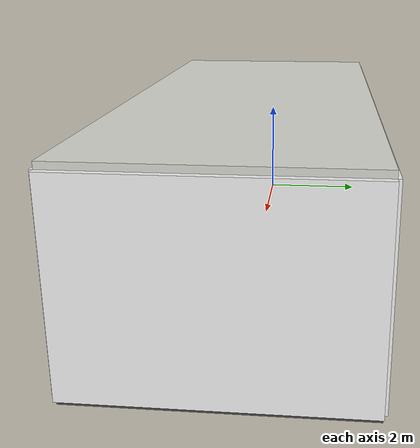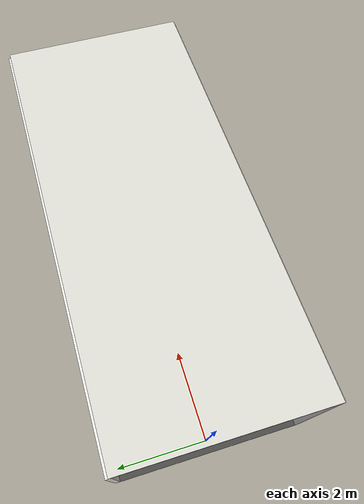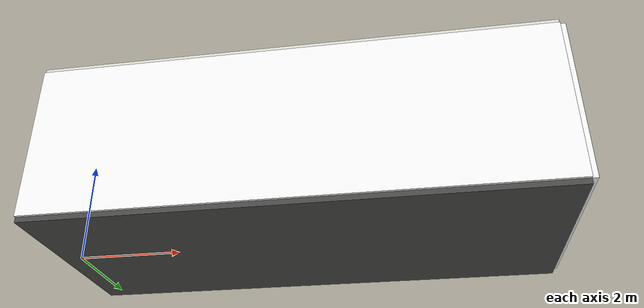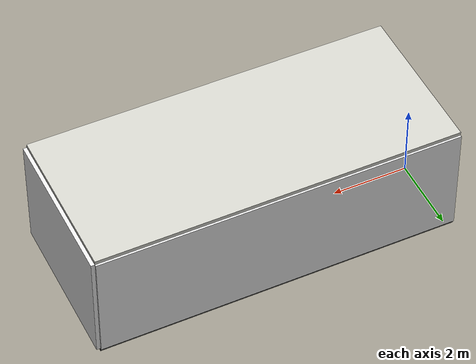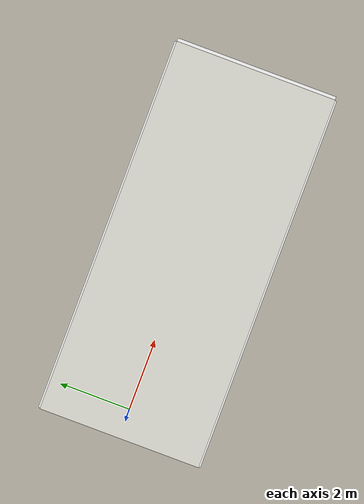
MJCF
<mujoco model="Textured square obstacle hallway">
  <option integrator="RK4" density="1.225" viscosity="1.8e-5" timestep="0.001"/>
  <compiler inertiafromgeom="false" autolimits="true" angle="degree"/>
  <statistic center="4.5 0 0.5" extent="5.5"/>
  <visual>
    <headlight diffuse="0.12 0.12 0.12" ambient="0.08 0.08 0.08" specular="0 0 0"/>
    <rgba haze="0.03 0.03 0.03 0" fog="1 1 1 0"/>
    <map fogstart="0" fogend="0"/>
    <global azimuth="135" elevation="-18" ellipsoidinertia="true"/>
  </visual>
  <asset>
    <texture name="floor_texture" type="2d" builtin="checker"
             rgb1="0.31 0.31 0.30" rgb2="0.23 0.23 0.22" width="512" height="512"/>
    <texture name="wall_texture" type="2d" file="textures/off_white_painted_plaster.png"/>
    <texture name="obstacle_texture" type="2d" builtin="checker" rgb1="0.98 0.72 0.02" rgb2="0.025 0.025 0.025" width="256" height="256"/>
    <material name="floor" texture="floor_texture" texrepeat="12 4"
              texuniform="true" reflectance="0.12" specular="0.18" shininess="0.25"/>
    <material name="wall" texture="wall_texture" texrepeat="6 2"
              texuniform="true" rgba="1 1 1 1" specular="0.08" shininess="0.12"/>
    <material name="obstacle_checker" texture="obstacle_texture" texrepeat="6 6" texuniform="true" specular="0.08" shininess="0.10"/>
    <material name="ceiling" rgba="0.82 0.82 0.79 1" specular="0.04" shininess="0.08"/>
    <material name="strip_light" rgba="1 0.98 0.86 1" emission="1" specular="0" shininess="0"/>
  </asset>
  <worldbody>
    <camera name="approach_preview" pos="0 0 0.5" xyaxes="0 -1 0 0 0 1" fovy="47.168554"/>
    <geom name="corridor_floor" type="box" pos="4.5 0 -0.05" size="4.75 2.05 0.05"
          material="floor" contype="1" conaffinity="1"/>
    <geom name="corridor_left_wall" type="box" pos="4.5 2.05 1.5" size="4.75 1.5 0.05"
          euler="90 0 0" material="wall" contype="1" conaffinity="1"/>
    <geom name="corridor_right_wall" type="box" pos="4.5 -2.05 1.5" size="4.75 1.5 0.05"
          euler="90 0 0" material="wall" contype="1" conaffinity="1"/>
    <geom name="corridor_end_wall" type="box" pos="9.3 0 1.5" size="1.5 2.05 0.05"
          euler="0 90 0" material="wall" contype="1" conaffinity="1"/>
    <geom name="corridor_ceiling" type="box" pos="4.5 0 3.05" size="4.75 2.05 0.05"
          material="ceiling" contype="1" conaffinity="1"/>
    <body name="hallway_clear_obstacle" mocap="true" pos="6.0 0 0.5">
      <geom name="paper_square_obstacle" type="box" size="0.15 0.35 0.35"
            material="obstacle_checker" contype="1" conaffinity="1"/>
    </body>
    <site name="hallway_clear_obstacle_target" pos="6.0 1.35 0.5"
          size="0.01" rgba="0 0 0 0"/>
    <geom name="ceiling_strip_light" type="box" pos="4.5 0 2.985" size="4.15 0.055 0.015"
          material="strip_light" contype="0" conaffinity="0"/>
    <light name="strip_light_1" pos="1.0 0 2.94" dir="0 0 -1" diffuse="0.85 0.82 0.72" cutoff="75"/>
    <light name="strip_light_2" pos="3.0 0 2.94" dir="0 0 -1" diffuse="0.85 0.82 0.72" cutoff="75"/>
    <light name="strip_light_3" pos="5.0 0 2.94" dir="0 0 -1" diffuse="0.85 0.82 0.72" cutoff="75"/>
    <light name="strip_light_4" pos="7.0 0 2.94" dir="0 0 -1" diffuse="0.85 0.82 0.72" cutoff="75"/>
    <light name="strip_light_5" pos="8.5 0 2.94" dir="0 0 -1" diffuse="0.85 0.82 0.72" cutoff="75"/>
  </worldbody>
</mujoco>
